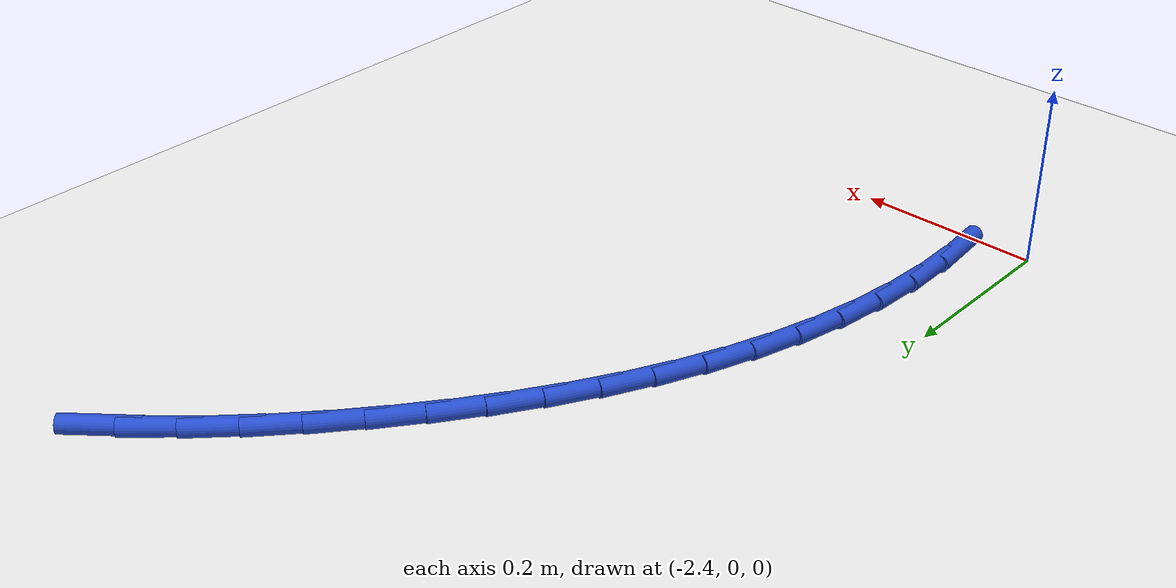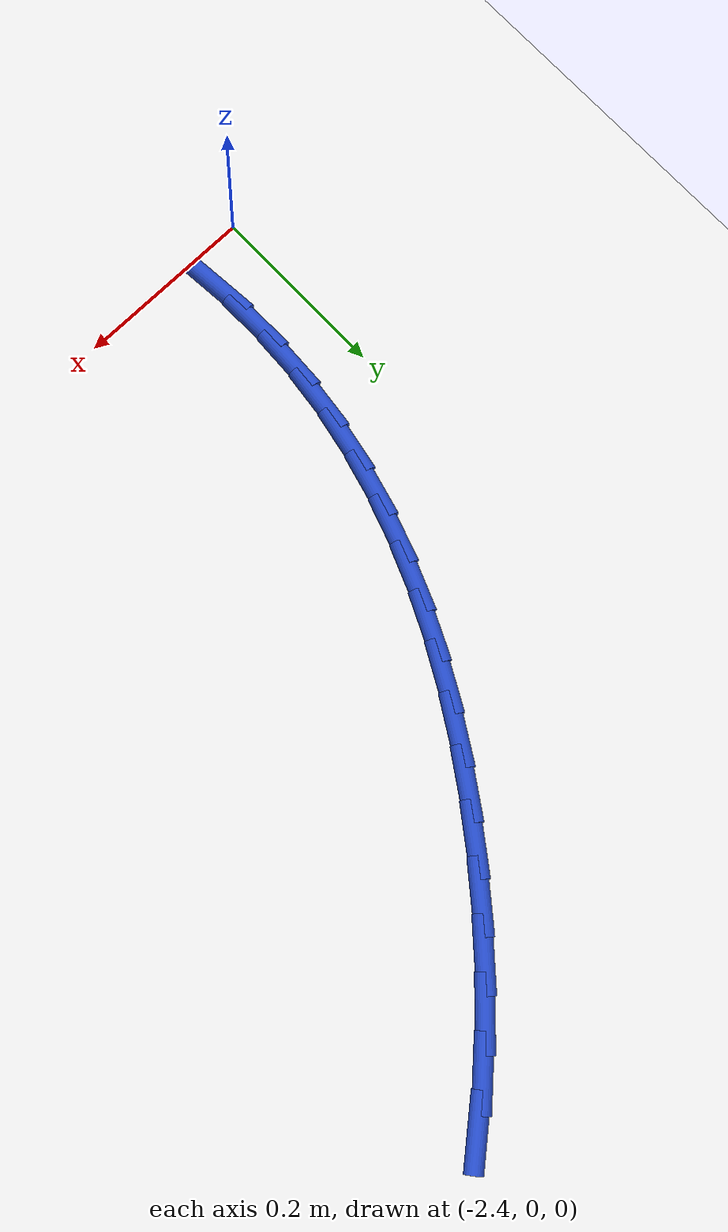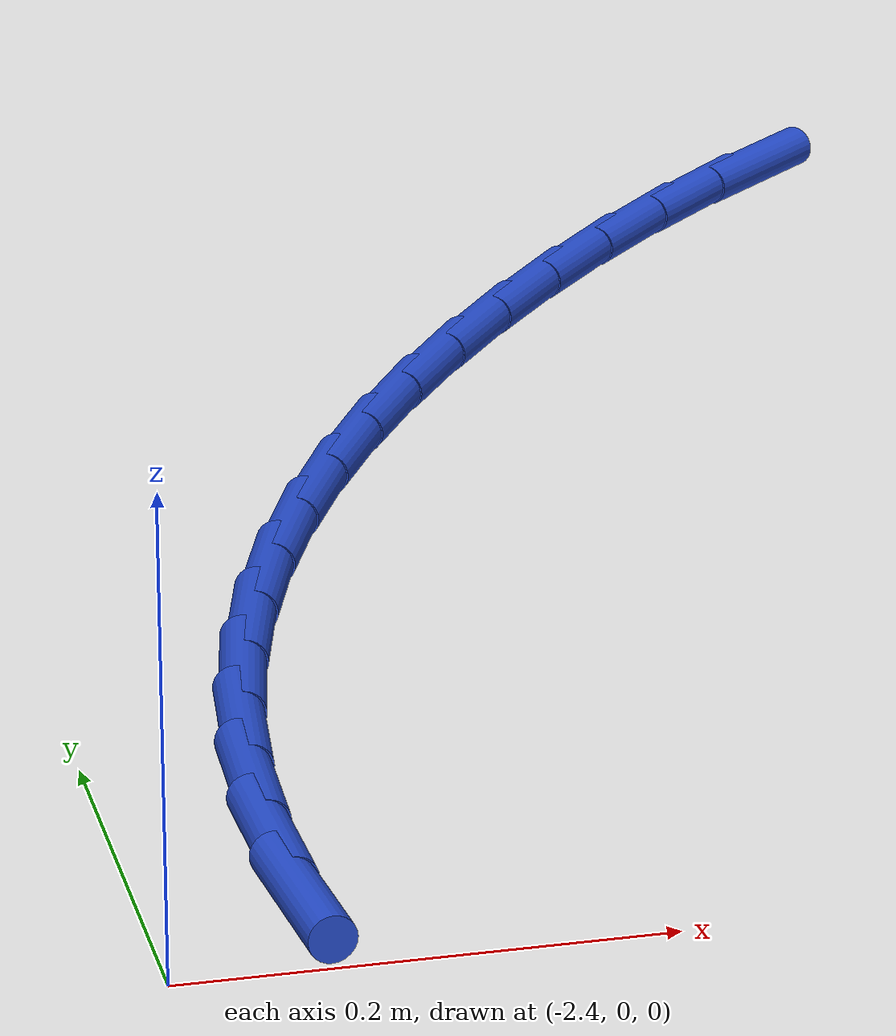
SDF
<sdf version="1.6">
 <world name="default">
  <model name="ground_plane">
   <static>1</static>
   <link name="link">
    <collision name="collision">
     <geometry><plane><normal>0 0 1</normal><size>100 100</size></plane></geometry>
     <surface><friction><ode><mu>100</mu><mu2>50</mu2></ode></friction></surface>
    </collision>
    <visual name="visual">
     <cast_shadows>0</cast_shadows>
     <geometry><plane><normal>0 0 1</normal><size>100 100</size></plane></geometry>
     <material>
      <script><uri>file://media/materials/scripts/gazebo.material</uri><name>Gazebo/WhiteGlow</name></script>
     </material>
    </visual>
   </link>
  </model>
  <model name="line">
   <link name="link_53">
    <pose>-1.9350138655739417 0.845478580997849 0.01 0 1.57 0.7010977648688959</pose>
    <collision name="collision">
     <geometry><cylinder><radius>0.01</radius><length>0.08</length></cylinder></geometry>
    </collision>
    <visual name="visual">
     <material>
      <script><name>Gazebo/Blue</name><uri>file://media/materials/scripts/gazebo.material</uri></script>
     </material>
     <geometry><cylinder><radius>0.01</radius><length>0.08</length></cylinder></geometry>
    </visual>
   </link>
   <link name="link_54">
    <pose>-1.977458439007535 0.8096482858570216 0.01 0 1.57 0.7585522349600228</pose>
    <collision name="collision">
     <geometry><cylinder><radius>0.01</radius><length>0.08</length></cylinder></geometry>
    </collision>
    <visual name="visual">
     <material>
      <script><name>Gazebo/Blue</name><uri>file://media/materials/scripts/gazebo.material</uri></script>
     </material>
     <geometry><cylinder><radius>0.01</radius><length>0.08</length></cylinder></geometry>
    </visual>
   </link>
   <link name="link_55">
    <pose>-2.0181377510014284 0.7710965169257332 0.01 0 1.57 0.8100043218370406</pose>
    <collision name="collision">
     <geometry><cylinder><radius>0.01</radius><length>0.08</length></cylinder></geometry>
    </collision>
    <visual name="visual">
     <material>
      <script><name>Gazebo/Blue</name><uri>file://media/materials/scripts/gazebo.material</uri></script>
     </material>
     <geometry><cylinder><radius>0.01</radius><length>0.08</length></cylinder></geometry>
    </visual>
   </link>
   <link name="link_56">
    <pose>-2.0569897714823253 0.7302838590329364 0.01 0 1.57 0.856284110767049</pose>
    <collision name="collision">
     <geometry><cylinder><radius>0.01</radius><length>0.08</length></cylinder></geometry>
    </collision>
    <visual name="visual">
     <material>
      <script><name>Gazebo/Blue</name><uri>file://media/materials/scripts/gazebo.material</uri></script>
     </material>
     <geometry><cylinder><radius>0.01</radius><length>0.08</length></cylinder></geometry>
    </visual>
   </link>
   <link name="link_57">
    <pose>-2.093952470376929 0.687670897007583 0.01 0 1.57 0.898159728653412</pose>
    <collision name="collision">
     <geometry><cylinder><radius>0.01</radius><length>0.08</length></cylinder></geometry>
    </collision>
    <visual name="visual">
     <material>
      <script><name>Gazebo/Blue</name><uri>file://media/materials/scripts/gazebo.material</uri></script>
     </material>
     <geometry><cylinder><radius>0.01</radius><length>0.08</length></cylinder></geometry>
    </visual>
   </link>
   <link name="link_58">
    <pose>-2.128963661512001 0.6437176161834735 0.01 0 1.57 0.938141733169309</pose>
    <collision name="collision">
     <geometry><cylinder><radius>0.01</radius><length>0.08</length></cylinder></geometry>
    </collision>
    <visual name="visual">
     <material>
      <script><name>Gazebo/Blue</name><uri>file://media/materials/scripts/gazebo.material</uri></script>
     </material>
     <geometry><cylinder><radius>0.01</radius><length>0.08</length></cylinder></geometry>
    </visual>
   </link>
   <link name="link_59">
    <pose>-2.1619281352241644 0.5987571765944075 0.01 0 1.57 0.9807251590077517</pose>
    <collision name="collision">
     <geometry><cylinder><radius>0.01</radius><length>0.08</length></cylinder></geometry>
    </collision>
    <visual name="visual">
     <material>
      <script><name>Gazebo/Blue</name><uri>file://media/materials/scripts/gazebo.material</uri></script>
     </material>
     <geometry><cylinder><radius>0.01</radius><length>0.08</length></cylinder></geometry>
    </visual>
   </link>
   <link name="link_60">
    <pose>-2.1926770362806183 0.5528399056178768 0.01 0 1.57 1.0266617675713505</pose>
    <collision name="collision">
     <geometry><cylinder><radius>0.01</radius><length>0.08</length></cylinder></geometry>
    </collision>
    <visual name="visual">
     <material>
      <script><name>Gazebo/Blue</name><uri>file://media/materials/scripts/gazebo.material</uri></script>
     </material>
     <geometry><cylinder><radius>0.01</radius><length>0.08</length></cylinder></geometry>
    </visual>
   </link>
   <link name="link_61">
    <pose>-2.2210315500183637 0.5059778818660913 0.01 0 1.57 1.0761139163103117</pose>
    <collision name="collision">
     <geometry><cylinder><radius>0.01</radius><length>0.08</length></cylinder></geometry>
    </collision>
    <visual name="visual">
     <material>
      <script><name>Gazebo/Blue</name><uri>file://media/materials/scripts/gazebo.material</uri></script>
     </material>
     <geometry><cylinder><radius>0.01</radius><length>0.08</length></cylinder></geometry>
    </visual>
   </link>
   <link name="link_62">
    <pose>-2.2468128617744005 0.4581831839512634 0.01 0 1.57 1.1291998154365601</pose>
    <collision name="collision">
     <geometry><cylinder><radius>0.01</radius><length>0.08</length></cylinder></geometry>
    </collision>
    <visual name="visual">
     <material>
      <script><name>Gazebo/Blue</name><uri>file://media/materials/scripts/gazebo.material</uri></script>
     </material>
     <geometry><cylinder><radius>0.01</radius><length>0.08</length></cylinder></geometry>
    </visual>
   </link>
   <link name="link_63">
    <pose>-2.269842156885729 0.4094678904856034 0.01 0 1.57 1.1859728442675448</pose>
    <collision name="collision">
     <geometry><cylinder><radius>0.01</radius><length>0.08</length></cylinder></geometry>
    </collision>
    <visual name="visual">
     <material>
      <script><name>Gazebo/Blue</name><uri>file://media/materials/scripts/gazebo.material</uri></script>
     </material>
     <geometry><cylinder><radius>0.01</radius><length>0.08</length></cylinder></geometry>
    </visual>
   </link>
   <link name="link_64">
    <pose>-2.2899406206893484 0.35984408008132346 0.01 0 1.57 1.2463984577745113</pose>
    <collision name="collision">
     <geometry><cylinder><radius>0.01</radius><length>0.08</length></cylinder></geometry>
    </collision>
    <visual name="visual">
     <material>
      <script><name>Gazebo/Blue</name><uri>file://media/materials/scripts/gazebo.material</uri></script>
     </material>
     <geometry><cylinder><radius>0.01</radius><length>0.08</length></cylinder></geometry>
    </visual>
   </link>
   <link name="link_65">
    <pose>-2.3069294385222596 0.30932383135063446 0.01 0 1.57 1.3103308521346704</pose>
    <collision name="collision">
     <geometry><cylinder><radius>0.01</radius><length>0.08</length></cylinder></geometry>
    </collision>
    <visual name="visual">
     <material>
      <script><name>Gazebo/Blue</name><uri>file://media/materials/scripts/gazebo.material</uri></script>
     </material>
     <geometry><cylinder><radius>0.01</radius><length>0.08</length></cylinder></geometry>
    </visual>
   </link>
   <link name="link_66">
    <pose>-2.320629795721463 0.25791922290574715 0.01 0 1.57 1.3774928217987614</pose>
    <collision name="collision">
     <geometry><cylinder><radius>0.01</radius><length>0.08</length></cylinder></geometry>
    </collision>
    <visual name="visual">
     <material>
      <script><name>Gazebo/Blue</name><uri>file://media/materials/scripts/gazebo.material</uri></script>
     </material>
     <geometry><cylinder><radius>0.01</radius><length>0.08</length></cylinder></geometry>
    </visual>
   </link>
   <link name="link_67">
    <pose>-2.330862877623958 0.2056423333588738 0.01 0 1.57 1.4474632756569723</pose>
    <collision name="collision">
     <geometry><cylinder><radius>0.01</radius><length>0.08</length></cylinder></geometry>
    </collision>
    <visual name="visual">
     <material>
      <script><name>Gazebo/Blue</name><uri>file://media/materials/scripts/gazebo.material</uri></script>
     </material>
     <geometry><cylinder><radius>0.01</radius><length>0.08</length></cylinder></geometry>
    </visual>
   </link>
   <link name="link_68">
    <pose>-2.3374498695667456 0.15250524132222465 0.01 0 1.57 1.519458174033487</pose>
    <collision name="collision">
     <geometry><cylinder><radius>0.01</radius><length>0.08</length></cylinder></geometry>
    </collision>
    <visual name="visual">
     <material>
      <script><name>Gazebo/Blue</name><uri>file://media/materials/scripts/gazebo.material</uri></script>
     </material>
     <geometry><cylinder><radius>0.01</radius><length>0.08</length></cylinder></geometry>
    </visual>
   </link>
   <link name="link_69">
    <pose>-2.3402231965632354 0.09853192998272314 0.01 0 1.57 -1.5515024114023652</pose>
    <collision name="collision">
     <geometry><cylinder><radius>0.01</radius><length>0.08</length></cylinder></geometry>
    </collision>
    <visual name="visual">
     <material>
      <script><name>Gazebo/Blue</name><uri>file://media/materials/scripts/gazebo.material</uri></script>
     </material>
     <geometry><cylinder><radius>0.01</radius><length>0.08</length></cylinder></geometry>
    </visual>
   </link>
   <link name="link_70">
    <pose>-2.3391691830316934 0.04390938606015118 0.01 0 1.57 -1.4839901937349684</pose>
    <collision name="collision">
     <geometry><cylinder><radius>0.01</radius><length>0.08</length></cylinder></geometry>
    </collision>
    <visual name="visual">
     <material>
      <script><name>Gazebo/Blue</name><uri>file://media/materials/scripts/gazebo.material</uri></script>
     </material>
     <geometry><cylinder><radius>0.01</radius><length>0.08</length></cylinder></geometry>
    </visual>
   </link>
  </model>
 </world>
</sdf>
